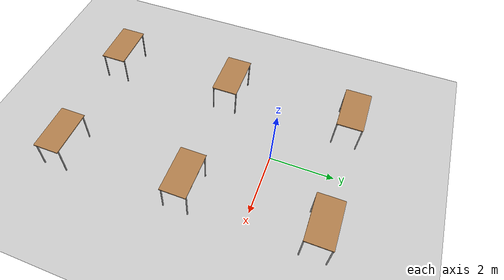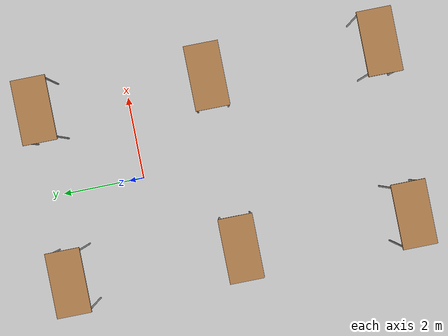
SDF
<sdf version="1.4">
 <world name="default">
  <physics type="ode">
   <gravity>0 0 -9.8</gravity>
   <ode>
    <solver><type>quick</type><iters>20</iters><sor>1.0</sor></solver>
    <constraints>
     <cfm>0.0</cfm>
     <erp>0.2</erp>
     <contact_max_correcting_vel>100.0</contact_max_correcting_vel>
     <contact_surface_layer>0.0</contact_surface_layer>
    </constraints>
   </ode>
   <max_step_size>0.001</max_step_size>
  </physics>
  <include><uri>model://sun</uri></include>
  <model name="table6">
   <static>1</static>
   <link name="link">
    <collision name="surface">
     <pose>0 0 1 0 -0 0</pose>
     <geometry><box><size>1.5 0.8 0.03</size></box></geometry>
     <surface><friction><ode><mu>0.6</mu><mu2>0.6</mu2></ode></friction></surface>
    </collision>
    <visual name="visual1">
     <pose>0 0 1 0 -0 0</pose>
     <geometry><box><size>1.5 0.8 0.03</size></box></geometry>
     <material>
      <diffuse>1 1 1 1</diffuse>
      <script><uri>file://media/materials/scripts/gazebo.material</uri><name>Gazebo/Wood</name></script>
      <pbr><metal><albedo_map>model://Table/Table_Diffuse.jpg</albedo_map></metal></pbr>
     </material>
    </visual>
    <collision name="front_left_leg">
     <pose>0.68 0.38 0.5 0 -0 0</pose>
     <geometry><cylinder><radius>0.02</radius><length>1</length></cylinder></geometry>
    </collision>
    <visual name="front_left_leg">
     <pose>0.68 0.38 0.5 0 -0 0</pose>
     <geometry><cylinder><radius>0.02</radius><length>1</length></cylinder></geometry>
     <material>
      <diffuse>0.5 0.5 0.5 1</diffuse>
      <script><uri>file://media/materials/scripts/gazebo.material</uri><name>Gazebo/Grey</name></script>
     </material>
    </visual>
    <collision name="front_right_leg">
     <pose>0.68 -0.38 0.5 0 -0 0</pose>
     <geometry><cylinder><radius>0.02</radius><length>1</length></cylinder></geometry>
    </collision>
    <visual name="front_right_leg">
     <pose>0.68 -0.38 0.5 0 -0 0</pose>
     <geometry><cylinder><radius>0.02</radius><length>1</length></cylinder></geometry>
     <material>
      <diffuse>0.5 0.5 0.5 1</diffuse>
      <script><uri>file://media/materials/scripts/gazebo.material</uri><name>Gazebo/Grey</name></script>
     </material>
    </visual>
    <collision name="back_right_leg">
     <pose>-0.68 -0.38 0.5 0 -0 0</pose>
     <geometry><cylinder><radius>0.02</radius><length>1</length></cylinder></geometry>
    </collision>
    <visual name="back_right_leg">
     <pose>-0.68 -0.38 0.5 0 -0 0</pose>
     <geometry><cylinder><radius>0.02</radius><length>1</length></cylinder></geometry>
     <material>
      <diffuse>0.5 0.5 0.5 1</diffuse>
      <script><uri>file://media/materials/scripts/gazebo.material</uri><name>Gazebo/Grey</name></script>
     </material>
    </visual>
    <collision name="back_left_leg">
     <pose>-0.68 0.38 0.5 0 -0 0</pose>
     <geometry><cylinder><radius>0.02</radius><length>1</length></cylinder></geometry>
    </collision>
    <visual name="back_left_leg">
     <pose>-0.68 0.38 0.5 0 -0 0</pose>
     <geometry><cylinder><radius>0.02</radius><length>1</length></cylinder></geometry>
     <material>
      <diffuse>0.5 0.5 0.5 1</diffuse>
      <script><uri>file://media/materials/scripts/gazebo.material</uri><name>Gazebo/Grey</name></script>
     </material>
    </visual>
   </link>
   <pose>2 2 0 0 -0 0</pose>
  </model>
  <model name="table7">
   <static>1</static>
   <link name="link">
    <collision name="surface">
     <pose>0 0 1 0 -0 0</pose>
     <geometry><box><size>1.5 0.8 0.03</size></box></geometry>
     <surface><friction><ode><mu>0.6</mu><mu2>0.6</mu2></ode></friction></surface>
    </collision>
    <visual name="visual1">
     <pose>0 0 1 0 -0 0</pose>
     <geometry><box><size>1.5 0.8 0.03</size></box></geometry>
     <material>
      <diffuse>1 1 1 1</diffuse>
      <script><uri>file://media/materials/scripts/gazebo.material</uri><name>Gazebo/Wood</name></script>
      <pbr><metal><albedo_map>model://Table/Table_Diffuse.jpg</albedo_map></metal></pbr>
     </material>
    </visual>
    <collision name="front_left_leg">
     <pose>0.68 0.38 0.5 0 -0 0</pose>
     <geometry><cylinder><radius>0.02</radius><length>1</length></cylinder></geometry>
    </collision>
    <visual name="front_left_leg">
     <pose>0.68 0.38 0.5 0 -0 0</pose>
     <geometry><cylinder><radius>0.02</radius><length>1</length></cylinder></geometry>
     <material>
      <diffuse>0.5 0.5 0.5 1</diffuse>
      <script><uri>file://media/materials/scripts/gazebo.material</uri><name>Gazebo/Grey</name></script>
     </material>
    </visual>
    <collision name="front_right_leg">
     <pose>0.68 -0.38 0.5 0 -0 0</pose>
     <geometry><cylinder><radius>0.02</radius><length>1</length></cylinder></geometry>
    </collision>
    <visual name="front_right_leg">
     <pose>0.68 -0.38 0.5 0 -0 0</pose>
     <geometry><cylinder><radius>0.02</radius><length>1</length></cylinder></geometry>
     <material>
      <diffuse>0.5 0.5 0.5 1</diffuse>
      <script><uri>file://media/materials/scripts/gazebo.material</uri><name>Gazebo/Grey</name></script>
     </material>
    </visual>
    <collision name="back_right_leg">
     <pose>-0.68 -0.38 0.5 0 -0 0</pose>
     <geometry><cylinder><radius>0.02</radius><length>1</length></cylinder></geometry>
    </collision>
    <visual name="back_right_leg">
     <pose>-0.68 -0.38 0.5 0 -0 0</pose>
     <geometry><cylinder><radius>0.02</radius><length>1</length></cylinder></geometry>
     <material>
      <diffuse>0.5 0.5 0.5 1</diffuse>
      <script><uri>file://media/materials/scripts/gazebo.material</uri><name>Gazebo/Grey</name></script>
     </material>
    </visual>
    <collision name="back_left_leg">
     <pose>-0.68 0.38 0.5 0 -0 0</pose>
     <geometry><cylinder><radius>0.02</radius><length>1</length></cylinder></geometry>
    </collision>
    <visual name="back_left_leg">
     <pose>-0.68 0.38 0.5 0 -0 0</pose>
     <geometry><cylinder><radius>0.02</radius><length>1</length></cylinder></geometry>
     <material>
      <diffuse>0.5 0.5 0.5 1</diffuse>
      <script><uri>file://media/materials/scripts/gazebo.material</uri><name>Gazebo/Grey</name></script>
     </material>
    </visual>
   </link>
   <pose>-2 2 0 0 -0 0</pose>
  </model>
  <model name="table8">
   <static>1</static>
   <link name="link">
    <collision name="surface">
     <pose>0 0 1 0 -0 0</pose>
     <geometry><box><size>1.5 0.8 0.03</size></box></geometry>
     <surface><friction><ode><mu>0.6</mu><mu2>0.6</mu2></ode></friction></surface>
    </collision>
    <visual name="visual1">
     <pose>0 0 1 0 -0 0</pose>
     <geometry><box><size>1.5 0.8 0.03</size></box></geometry>
     <material>
      <diffuse>1 1 1 1</diffuse>
      <script><uri>file://media/materials/scripts/gazebo.material</uri><name>Gazebo/Wood</name></script>
      <pbr><metal><albedo_map>model://Table/Table_Diffuse.jpg</albedo_map></metal></pbr>
     </material>
    </visual>
    <collision name="front_left_leg">
     <pose>0.68 0.38 0.5 0 -0 0</pose>
     <geometry><cylinder><radius>0.02</radius><length>1</length></cylinder></geometry>
    </collision>
    <visual name="front_left_leg">
     <pose>0.68 0.38 0.5 0 -0 0</pose>
     <geometry><cylinder><radius>0.02</radius><length>1</length></cylinder></geometry>
     <material>
      <diffuse>0.5 0.5 0.5 1</diffuse>
      <script><uri>file://media/materials/scripts/gazebo.material</uri><name>Gazebo/Grey</name></script>
     </material>
    </visual>
    <collision name="front_right_leg">
     <pose>0.68 -0.38 0.5 0 -0 0</pose>
     <geometry><cylinder><radius>0.02</radius><length>1</length></cylinder></geometry>
    </collision>
    <visual name="front_right_leg">
     <pose>0.68 -0.38 0.5 0 -0 0</pose>
     <geometry><cylinder><radius>0.02</radius><length>1</length></cylinder></geometry>
     <material>
      <diffuse>0.5 0.5 0.5 1</diffuse>
      <script><uri>file://media/materials/scripts/gazebo.material</uri><name>Gazebo/Grey</name></script>
     </material>
    </visual>
    <collision name="back_right_leg">
     <pose>-0.68 -0.38 0.5 0 -0 0</pose>
     <geometry><cylinder><radius>0.02</radius><length>1</length></cylinder></geometry>
    </collision>
    <visual name="back_right_leg">
     <pose>-0.68 -0.38 0.5 0 -0 0</pose>
     <geometry><cylinder><radius>0.02</radius><length>1</length></cylinder></geometry>
     <material>
      <diffuse>0.5 0.5 0.5 1</diffuse>
      <script><uri>file://media/materials/scripts/gazebo.material</uri><name>Gazebo/Grey</name></script>
     </material>
    </visual>
    <collision name="back_left_leg">
     <pose>-0.68 0.38 0.5 0 -0 0</pose>
     <geometry><cylinder><radius>0.02</radius><length>1</length></cylinder></geometry>
    </collision>
    <visual name="back_left_leg">
     <pose>-0.68 0.38 0.5 0 -0 0</pose>
     <geometry><cylinder><radius>0.02</radius><length>1</length></cylinder></geometry>
     <material>
      <diffuse>0.5 0.5 0.5 1</diffuse>
      <script><uri>file://media/materials/scripts/gazebo.material</uri><name>Gazebo/Grey</name></script>
     </material>
    </visual>
   </link>
   <pose>2 -2 0 0 -0 0</pose>
  </model>
  <model name="table9">
   <static>1</static>
   <link name="link">
    <collision name="surface">
     <pose>0 0 1 0 -0 0</pose>
     <geometry><box><size>1.5 0.8 0.03</size></box></geometry>
     <surface><friction><ode><mu>0.6</mu><mu2>0.6</mu2></ode></friction></surface>
    </collision>
    <visual name="visual1">
     <pose>0 0 1 0 -0 0</pose>
     <geometry><box><size>1.5 0.8 0.03</size></box></geometry>
     <material>
      <diffuse>1 1 1 1</diffuse>
      <script><uri>file://media/materials/scripts/gazebo.material</uri><name>Gazebo/Wood</name></script>
      <pbr><metal><albedo_map>model://Table/Table_Diffuse.jpg</albedo_map></metal></pbr>
     </material>
    </visual>
    <collision name="front_left_leg">
     <pose>0.68 0.38 0.5 0 -0 0</pose>
     <geometry><cylinder><radius>0.02</radius><length>1</length></cylinder></geometry>
    </collision>
    <visual name="front_left_leg">
     <pose>0.68 0.38 0.5 0 -0 0</pose>
     <geometry><cylinder><radius>0.02</radius><length>1</length></cylinder></geometry>
     <material>
      <diffuse>0.5 0.5 0.5 1</diffuse>
      <script><uri>file://media/materials/scripts/gazebo.material</uri><name>Gazebo/Grey</name></script>
     </material>
    </visual>
    <collision name="front_right_leg">
     <pose>0.68 -0.38 0.5 0 -0 0</pose>
     <geometry><cylinder><radius>0.02</radius><length>1</length></cylinder></geometry>
    </collision>
    <visual name="front_right_leg">
     <pose>0.68 -0.38 0.5 0 -0 0</pose>
     <geometry><cylinder><radius>0.02</radius><length>1</length></cylinder></geometry>
     <material>
      <diffuse>0.5 0.5 0.5 1</diffuse>
      <script><uri>file://media/materials/scripts/gazebo.material</uri><name>Gazebo/Grey</name></script>
     </material>
    </visual>
    <collision name="back_right_leg">
     <pose>-0.68 -0.38 0.5 0 -0 0</pose>
     <geometry><cylinder><radius>0.02</radius><length>1</length></cylinder></geometry>
    </collision>
    <visual name="back_right_leg">
     <pose>-0.68 -0.38 0.5 0 -0 0</pose>
     <geometry><cylinder><radius>0.02</radius><length>1</length></cylinder></geometry>
     <material>
      <diffuse>0.5 0.5 0.5 1</diffuse>
      <script><uri>file://media/materials/scripts/gazebo.material</uri><name>Gazebo/Grey</name></script>
     </material>
    </visual>
    <collision name="back_left_leg">
     <pose>-0.68 0.38 0.5 0 -0 0</pose>
     <geometry><cylinder><radius>0.02</radius><length>1</length></cylinder></geometry>
    </collision>
    <visual name="back_left_leg">
     <pose>-0.68 0.38 0.5 0 -0 0</pose>
     <geometry><cylinder><radius>0.02</radius><length>1</length></cylinder></geometry>
     <material>
      <diffuse>0.5 0.5 0.5 1</diffuse>
      <script><uri>file://media/materials/scripts/gazebo.material</uri><name>Gazebo/Grey</name></script>
     </material>
    </visual>
   </link>
   <pose>-2 -2 0 0 -0 0</pose>
  </model>
  <model name="table10">
   <static>1</static>
   <link name="link">
    <collision name="surface">
     <pose>0 0 1 0 -0 0</pose>
     <geometry><box><size>1.5 0.8 0.03</size></box></geometry>
     <surface><friction><ode><mu>0.6</mu><mu2>0.6</mu2></ode></friction></surface>
    </collision>
    <visual name="visual1">
     <pose>0 0 1 0 -0 0</pose>
     <geometry><box><size>1.5 0.8 0.03</size></box></geometry>
     <material>
      <diffuse>1 1 1 1</diffuse>
      <script><uri>file://media/materials/scripts/gazebo.material</uri><name>Gazebo/Wood</name></script>
      <pbr><metal><albedo_map>model://Table/Table_Diffuse.jpg</albedo_map></metal></pbr>
     </material>
    </visual>
    <collision name="front_left_leg">
     <pose>0.68 0.38 0.5 0 -0 0</pose>
     <geometry><cylinder><radius>0.02</radius><length>1</length></cylinder></geometry>
    </collision>
    <visual name="front_left_leg">
     <pose>0.68 0.38 0.5 0 -0 0</pose>
     <geometry><cylinder><radius>0.02</radius><length>1</length></cylinder></geometry>
     <material>
      <diffuse>0.5 0.5 0.5 1</diffuse>
      <script><uri>file://media/materials/scripts/gazebo.material</uri><name>Gazebo/Grey</name></script>
     </material>
    </visual>
    <collision name="front_right_leg">
     <pose>0.68 -0.38 0.5 0 -0 0</pose>
     <geometry><cylinder><radius>0.02</radius><length>1</length></cylinder></geometry>
    </collision>
    <visual name="front_right_leg">
     <pose>0.68 -0.38 0.5 0 -0 0</pose>
     <geometry><cylinder><radius>0.02</radius><length>1</length></cylinder></geometry>
     <material>
      <diffuse>0.5 0.5 0.5 1</diffuse>
      <script><uri>file://media/materials/scripts/gazebo.material</uri><name>Gazebo/Grey</name></script>
     </material>
    </visual>
    <collision name="back_right_leg">
     <pose>-0.68 -0.38 0.5 0 -0 0</pose>
     <geometry><cylinder><radius>0.02</radius><length>1</length></cylinder></geometry>
    </collision>
    <visual name="back_right_leg">
     <pose>-0.68 -0.38 0.5 0 -0 0</pose>
     <geometry><cylinder><radius>0.02</radius><length>1</length></cylinder></geometry>
     <material>
      <diffuse>0.5 0.5 0.5 1</diffuse>
      <script><uri>file://media/materials/scripts/gazebo.material</uri><name>Gazebo/Grey</name></script>
     </material>
    </visual>
    <collision name="back_left_leg">
     <pose>-0.68 0.38 0.5 0 -0 0</pose>
     <geometry><cylinder><radius>0.02</radius><length>1</length></cylinder></geometry>
    </collision>
    <visual name="back_left_leg">
     <pose>-0.68 0.38 0.5 0 -0 0</pose>
     <geometry><cylinder><radius>0.02</radius><length>1</length></cylinder></geometry>
     <material>
      <diffuse>0.5 0.5 0.5 1</diffuse>
      <script><uri>file://media/materials/scripts/gazebo.material</uri><name>Gazebo/Grey</name></script>
     </material>
    </visual>
   </link>
   <pose>2 -6 0 0 -0 0</pose>
  </model>
  <model name="table11">
   <static>1</static>
   <link name="link">
    <collision name="surface">
     <pose>0 0 1 0 -0 0</pose>
     <geometry><box><size>1.5 0.8 0.03</size></box></geometry>
     <surface><friction><ode><mu>0.6</mu><mu2>0.6</mu2></ode></friction></surface>
    </collision>
    <visual name="visual1">
     <pose>0 0 1 0 -0 0</pose>
     <geometry><box><size>1.5 0.8 0.03</size></box></geometry>
     <material>
      <diffuse>1 1 1 1</diffuse>
      <script><uri>file://media/materials/scripts/gazebo.material</uri><name>Gazebo/Wood</name></script>
      <pbr><metal><albedo_map>model://Table/Table_Diffuse.jpg</albedo_map></metal></pbr>
     </material>
    </visual>
    <collision name="front_left_leg">
     <pose>0.68 0.38 0.5 0 -0 0</pose>
     <geometry><cylinder><radius>0.02</radius><length>1</length></cylinder></geometry>
    </collision>
    <visual name="front_left_leg">
     <pose>0.68 0.38 0.5 0 -0 0</pose>
     <geometry><cylinder><radius>0.02</radius><length>1</length></cylinder></geometry>
     <material>
      <diffuse>0.5 0.5 0.5 1</diffuse>
      <script><uri>file://media/materials/scripts/gazebo.material</uri><name>Gazebo/Grey</name></script>
     </material>
    </visual>
    <collision name="front_right_leg">
     <pose>0.68 -0.38 0.5 0 -0 0</pose>
     <geometry><cylinder><radius>0.02</radius><length>1</length></cylinder></geometry>
    </collision>
    <visual name="front_right_leg">
     <pose>0.68 -0.38 0.5 0 -0 0</pose>
     <geometry><cylinder><radius>0.02</radius><length>1</length></cylinder></geometry>
     <material>
      <diffuse>0.5 0.5 0.5 1</diffuse>
      <script><uri>file://media/materials/scripts/gazebo.material</uri><name>Gazebo/Grey</name></script>
     </material>
    </visual>
    <collision name="back_right_leg">
     <pose>-0.68 -0.38 0.5 0 -0 0</pose>
     <geometry><cylinder><radius>0.02</radius><length>1</length></cylinder></geometry>
    </collision>
    <visual name="back_right_leg">
     <pose>-0.68 -0.38 0.5 0 -0 0</pose>
     <geometry><cylinder><radius>0.02</radius><length>1</length></cylinder></geometry>
     <material>
      <diffuse>0.5 0.5 0.5 1</diffuse>
      <script><uri>file://media/materials/scripts/gazebo.material</uri><name>Gazebo/Grey</name></script>
     </material>
    </visual>
    <collision name="back_left_leg">
     <pose>-0.68 0.38 0.5 0 -0 0</pose>
     <geometry><cylinder><radius>0.02</radius><length>1</length></cylinder></geometry>
    </collision>
    <visual name="back_left_leg">
     <pose>-0.68 0.38 0.5 0 -0 0</pose>
     <geometry><cylinder><radius>0.02</radius><length>1</length></cylinder></geometry>
     <material>
      <diffuse>0.5 0.5 0.5 1</diffuse>
      <script><uri>file://media/materials/scripts/gazebo.material</uri><name>Gazebo/Grey</name></script>
     </material>
    </visual>
   </link>
   <pose>-2 -6 0 0 -0 0</pose>
  </model>
  <include><uri>model://ground_plane</uri></include>
 </world>
</sdf>
